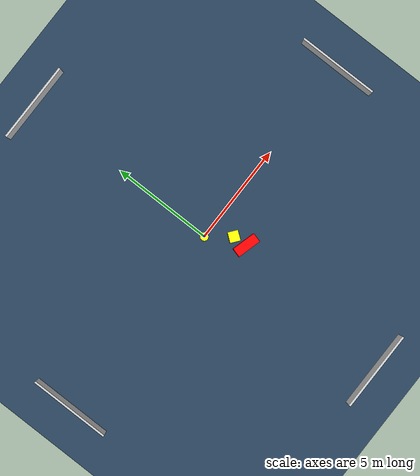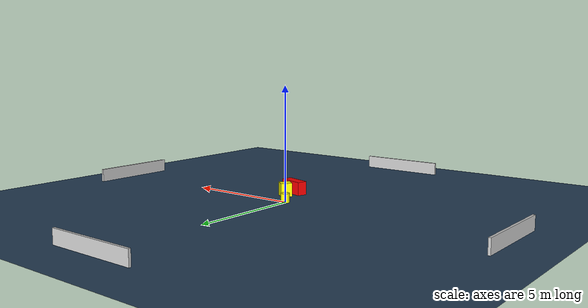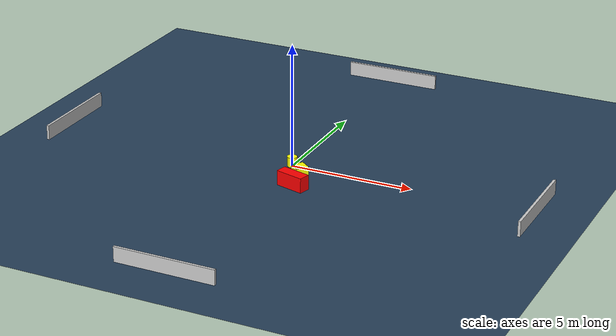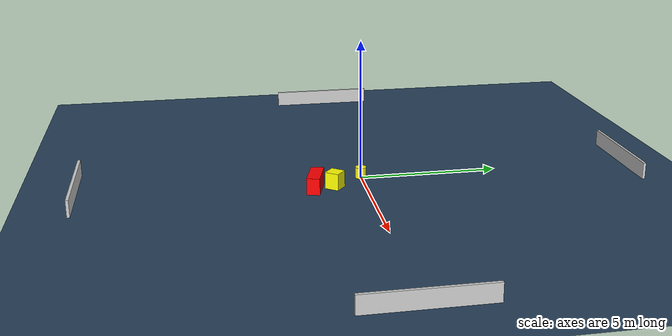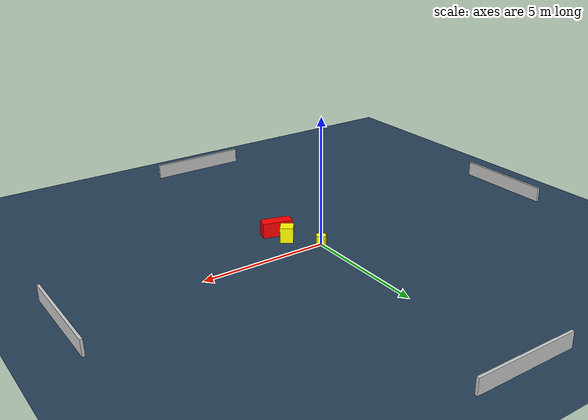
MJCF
<?xml version="1.0" ?>
<mujoco model="generated_environment">
  <option timestep="0.01" integrator="RK4" cone="elliptic"/>
  <default>
    <geom density="1"/>
  </default>
  <asset>
    <texture builtin="gradient" height="3072" name="skybox" rgb1="0.3 0.5 0.7" rgb2="0 0 0" type="skybox" width="512"/>
    <texture builtin="checker" height="300" name="groundplane" rgb1="0.2 0.3 0.4" rgb2="0.1 0.2 0.3" type="2d" width="300"/>
    <material name="groundplane" reflectance="0.2" texrepeat="5 5" texture="groundplane"/>
  </asset>
  <worldbody>
    <light dir="0 0 -1" directional="true" pos="0 0 1.5"/>
    <geom condim="3" friction="0.5 0.005 0.001" material="groundplane" name="floor" pos="0 0 0" size="0 0 0.05" type="plane"/>
    <body name="walls">
      <geom name="wall_1" condim="4" pos="-10.0 0.0 0.3" rgba="0.800000011920929 0.800000011920929 0.800000011920929 1.0" size="0.05 2.0 0.3" type="box"/>
      <geom name="wall_2" condim="4" pos="10.0 0.0 0.3" rgba="0.800000011920929 0.800000011920929 0.800000011920929 1.0" size="0.05 2.0 0.3" type="box"/>
      <geom name="wall_3" condim="4" pos="0.0 -10.0 0.3" rgba="0.800000011920929 0.800000011920929 0.800000011920929 1.0" size="2.0 0.05 0.3" type="box"/>
      <geom name="wall_4" condim="4" pos="0.0 10.0 0.3" rgba="0.800000011920929 0.800000011920929 0.800000011920929 1.0" size="2.0 0.05 0.3" type="box"/>
    </body>
    <body name="robot">
      <joint name="joint_x" type="slide" pos="0 0 0" axis="1 0 0"/>
      <joint name="joint_y" type="slide" pos="0 0 0" axis="0 1 0"/>
      <geom name="robot" type="cylinder" pos="0.0 0.0 0.2" size="0.2 0.2 0.0" mass="5.0" friction="1.0 0.005 0.0001" condim="4" rgba="1.0 1.0 0.0 1.0"/>
    </body>
    <body name="obstacle_1_movable">
      <geom name="obstacle_1_movable" condim="4" pos="0.8453392713625819 -1.0716818833947863 0.3" euler="0 0 142.13456066626566" friction="0.0 0.005 0.001" rgba="1.0 1.0 0.0 1.0" size="0.2489579012622697 0.2566366891830137 0.3" type="box" mass="0.1"/>
      <joint type="free"/>
    </body>
    <body name="obstacle_2_static">
      <geom name="obstacle_2_static" condim="4" pos="0.8819236658665138 -1.7694702860380163 0.3" euler="0 0 74.65348217884075" friction="0.0 0.005 0.001" rgba="1.0 0.0 0.0 1.0" size="0.23113082732405446 0.5921241465692844 0.3" type="box"/>
    </body>
  </worldbody>
  <actuator>
    <motor name="actuator_x" joint="joint_x" gear="1" ctrlrange="-1 1"/>
    <motor name="actuator_y" joint="joint_y" gear="1" ctrlrange="-1 1"/>
  </actuator>
</mujoco>
